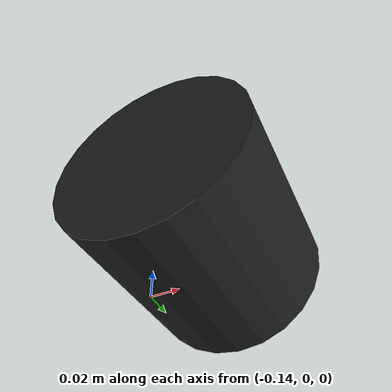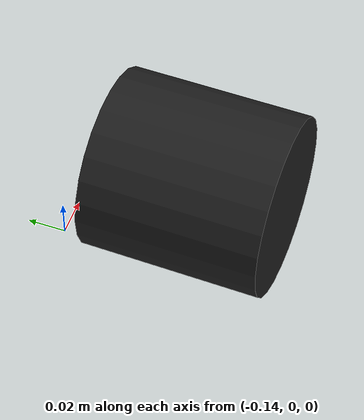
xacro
<?xml version="1.0"?>
<robot name="paletrone" xmlns:xacro="http://ros.org/wiki/xacro">

  <link name="world"/>

  <!-- Define X-axis prismatic joint and link -->
  <joint name="base_joint_X" type="prismatic">
    <parent link="world"/>
    <child link="base_link_X" />
    <origin xyz="-0.083278 0 0" rpy="0 0 0"/>
    <axis xyz="1 0 0"/>
    <limit lower="-0.5" upper="0.5" effort="100" velocity="0.1"/>
  </joint>
  <link name="base_link_X"/>

  <!-- Define Y-axis prismatic joint and link -->
  <joint name="base_joint_Y" type="prismatic">
    <parent link="base_link_X"/>
    <child link="base_link_Y" />
    <origin xyz="0 -0.053549 0" rpy="0 0 0"/>
    <axis xyz="0 1 0"/>
    <limit lower="-0.5" upper="0.5" effort="100" velocity="0.1"/>
  </joint>
  <link name="base_link_Y"/>

  <!-- Define Z-axis prismatic joint and link -->
  <joint name="base_joint_Z" type="prismatic">
    <parent link="base_link_Y"/>
    <child link="base_link_Z" />
    <origin xyz="0 0 -0.001452" rpy="0 0 0"/>
    <axis xyz="0 0 1"/>
    <limit lower="-0.5" upper="0.5" effort="100" velocity="0.1"/>
  </joint>
  <link name="base_link_Z"/>

  <!-- Define Z-axis revolute joint and link -->
  <joint name="base_joint_y" type="revolute">
    <parent link="base_link_Z"/>
    <child link="base_link_y" />
    <origin xyz="0 0 0" rpy="0 0 ${-0.560295}"/>
    <axis xyz="0 0 1"/>
    <limit lower="-5" upper="5" effort="100" velocity="0.1"/>
  </joint>
  <link name="base_link_y"/>

  <!-- Define Y-axis revolute joint and link -->
  <joint name="base_joint_p" type="revolute">
    <parent link="base_link_y"/>
    <child link="base_link_p" />
    <origin xyz="0 0 0" rpy="0 ${-1.558368} 0"/>
    <axis xyz="0 1 0"/>
    <limit lower="-5" upper="5" effort="100" velocity="0.1"/>
  </joint>
  <link name="base_link_p"/>

  <!-- Define X-axis revolute joint and link -->
  <joint name="base_joint_r" type="revolute">
    <parent link="base_link_p"/>
    <child link="base_link" />
    <origin xyz="0 0 0" rpy="${-1.035882} 0 0"/>
    <axis xyz="1 0 0"/>
    <limit lower="-5" upper="5" effort="100" velocity="0.1"/>
  </joint>

  <link name="base_link">
    <visual>
      <origin xyz="0 0 0.0" rpy="0 0 0"/>
      <geometry>
        <cylinder radius="0.05" length="0.1" />
      </geometry>
      <material name="light_black"/>
    </visual>

    <collision>
      <origin xyz="-0.064 0 0.047" rpy="0 0 0"/>
      <geometry>
        <box size="0.266 0.266 0.094"/>
      </geometry>
    </collision>

    <inertial>
      <origin xyz="0.0 0 0.0" rpy="0 0 0"/>
      <mass value="1.6329594e+00"/>
      <inertia ixx="1.0" ixy="0.0" ixz="0.0"
               iyy="1.0" iyz="0.0"
               izz="1.0" />
    </inertial>
  </link>

</robot>
